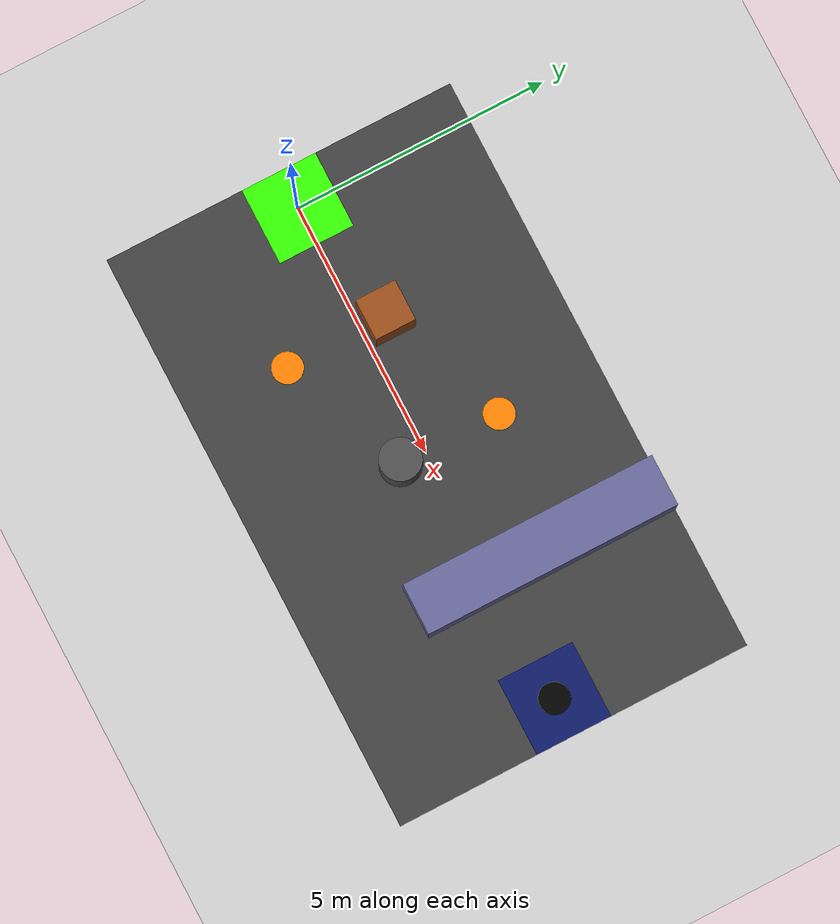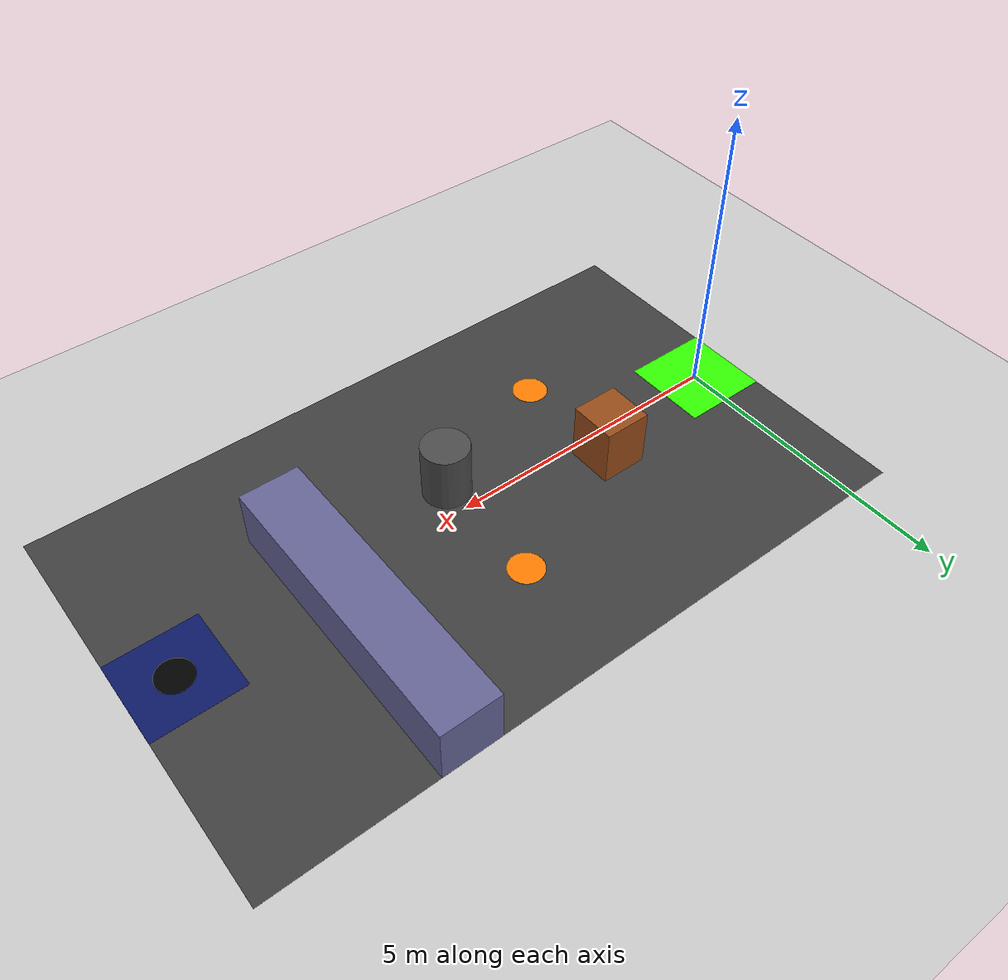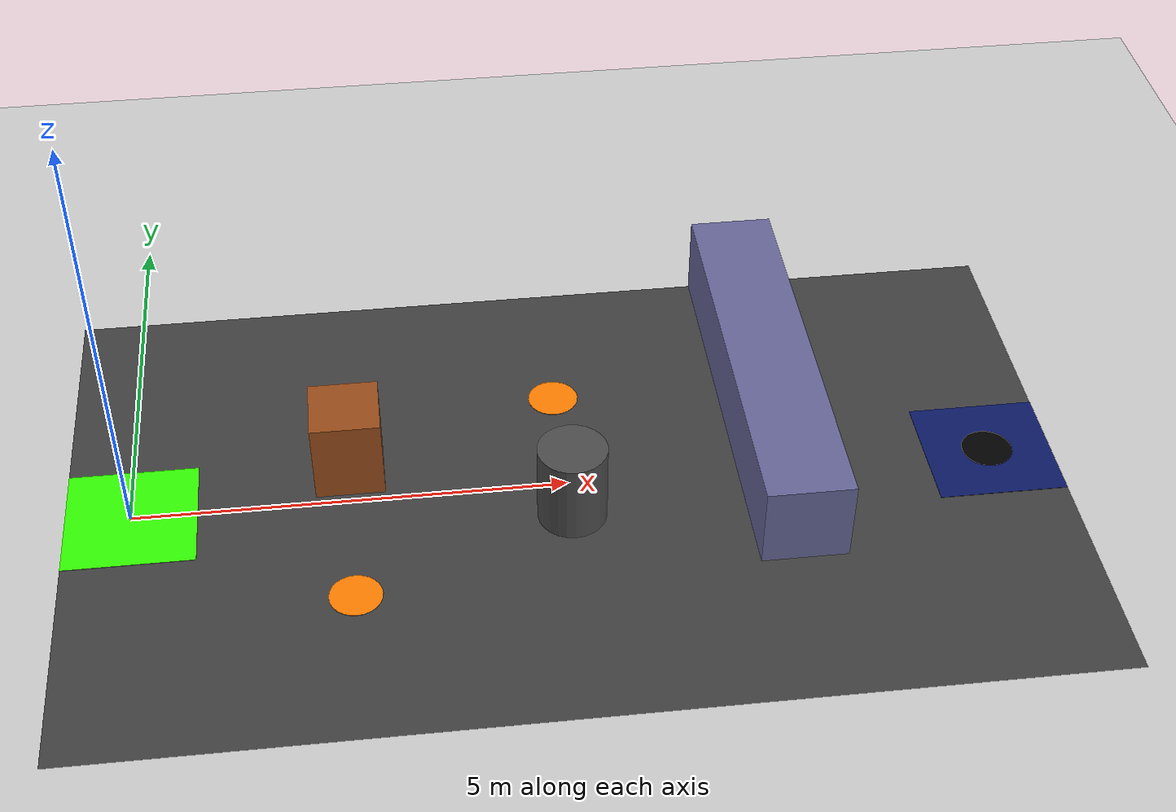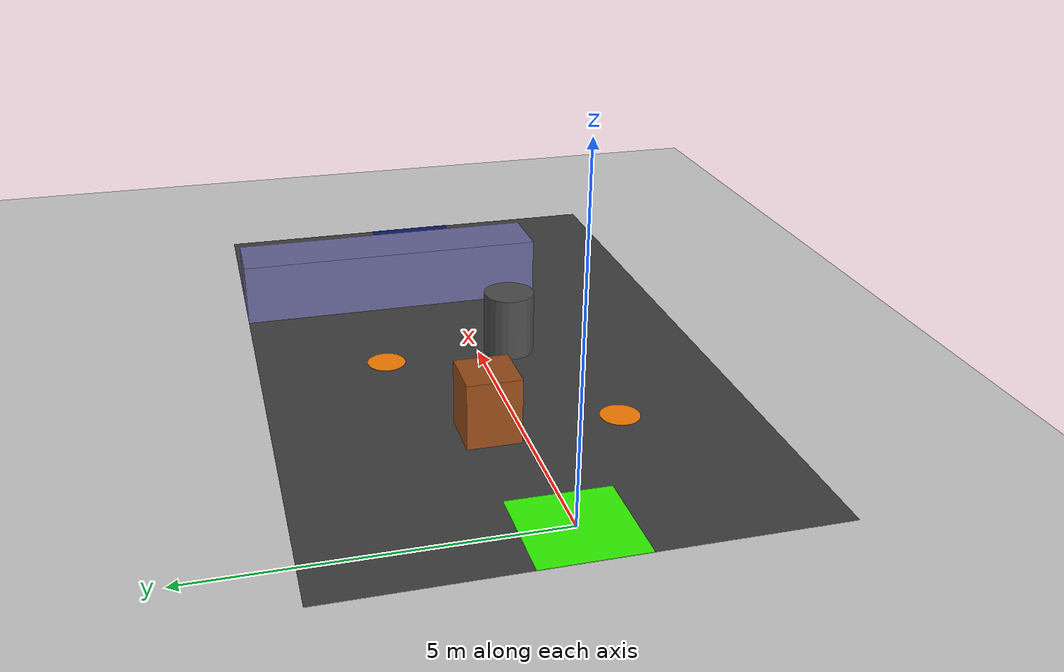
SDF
<sdf version='1.7'>
  <world name='default'>

    <gui fullscreen='0'>
        <camera name='user_camera'>
            <pose>18.0 -12.0 8.0 0 0.4 2.3</pose>
            <view_controller>orbit</view_controller>
            <projection_type>perspective</projection_type>
        </camera>
    </gui>

    <light name='sun' type='directional'>
      <cast_shadows>1</cast_shadows>
      <pose>0 0 10 0 -0 0</pose>
      <diffuse>0.8 0.8 0.8 1</diffuse>
      <specular>0.2 0.2 0.2 1</specular>
      <attenuation>
        <range>1000</range>
        <constant>0.9</constant>
        <linear>0.01</linear>
        <quadratic>0.001</quadratic>
      </attenuation>
      <direction>-0.5 0.1 -0.9</direction>
      <spot>
        <inner_angle>0</inner_angle>
        <outer_angle>0</outer_angle>
        <falloff>0</falloff>
      </spot>
    </light>
    <model name='ground_plane'>
      <static>1</static>
      <link name='link'>
        <collision name='collision'>
          <geometry>
            <plane>
              <normal>0 0 1</normal>
              <size>100 100</size>
            </plane>
          </geometry>
          <surface>
            <contact>
              <collide_bitmask>65535</collide_bitmask>
              <ode/>
            </contact>
            <friction>
              <ode>
                <mu>100</mu>
                <mu2>50</mu2>
              </ode>
              <torsional>
                <ode/>
              </torsional>
            </friction>
            <bounce/>
          </surface>
          <max_contacts>10</max_contacts>
        </collision>
        <visual name='visual'>
          <cast_shadows>0</cast_shadows>
          <geometry>
            <plane>
              <normal>0 0 1</normal>
              <size>100 100</size>
            </plane>
          </geometry>
          <material>
            <script>
              <uri>file://media/materials/scripts/gazebo.material</uri>
              <name>Gazebo/Grey</name>
            </script>
          </material>
        </visual>
        <self_collide>0</self_collide>
        <enable_wind>0</enable_wind>
        <kinematic>0</kinematic>
      </link>
    </model>

    <model name="zone_start">
      <static>true</static>
      <pose>0.0 0.0 0.005 0 0 0</pose>
      <link name="link">
        <visual name="visual">
          <geometry>
            <box><size>1.5 1.5 0.01</size></box>
          </geometry>
          <material>
            <ambient>0.2 1.0 0.0 1</ambient>
            <diffuse>0.2 1.0 0.0 1</diffuse>
            <emissive>0.1 0.5 0.0 1</emissive>
          </material>
        </visual>
      </link>
    </model>

    <model name="battlefield">
      <static>true</static>
      <pose>5.0 0.0 0.003 0 0 0</pose>
      <link name="link">
        <visual name="visual">
          <geometry>
            <box><size>11.5 7.0 0.001</size></box>
          </geometry>
          <material>
            <ambient>0.25 0.25 0.25 1</ambient>
            <diffuse>0.25 0.25 0.25 1</diffuse>
            <emissive>0.1 0.1 0.1 1</emissive>
          </material>
        </visual>
      </link>
    </model>

    <model name="zone_finish">
      <static>true</static>
      <pose>10.0 0.0 0.005 0 0 0</pose>
      <link name="link">
        <visual name="visual_base">
          <geometry>
            <box><size>1.5 1.5 0.01</size></box>
          </geometry>
          <material>
            <ambient>0.05 0.1 0.4 1</ambient>
            <diffuse>0.05 0.1 0.4 1</diffuse>
          </material>
        </visual>
        <visual name="visual_marker">
          <pose>0 0 0.006 0 0 0</pose>
          <geometry>
            <cylinder><radius>0.3</radius><length>0.005</length></cylinder>
          </geometry>
          <material>
            <ambient>0.0 0.0 0.0 1</ambient>
            <diffuse>0.0 0.0 0.0 1</diffuse>
          </material>
        </visual>
      </link>
    </model>

    <model name="waypoint_1">
      <static>true</static>
      <pose>2.5 -1.5 0.005 0 0 0</pose>
      <link name="link">
        <visual name="visual">
          <geometry>
            <cylinder><radius>0.3</radius><length>0.01</length></cylinder>
          </geometry>
          <material>
            <ambient>1.0 0.5 0.0 1</ambient>
            <diffuse>1.0 0.5 0.0 1</diffuse>
            <emissive>0.3 0.15 0.0 1</emissive>
          </material>
        </visual>
      </link>
    </model>

    <model name="waypoint_2">
      <static>true</static>
      <pose>5.0 1.5 0.005 0 0 0</pose>
      <link name="link">
        <visual name="visual">
          <geometry>
            <cylinder><radius>0.3</radius><length>0.01</length></cylinder>
          </geometry>
          <material>
            <ambient>1.0 0.5 0.0 1</ambient>
            <diffuse>1.0 0.5 0.0 1</diffuse>
            <emissive>0.3 0.15 0.0 1</emissive>
          </material>
        </visual>
      </link>
    </model>

    <model name="obstacle_1">
      <static>true</static>
      <pose>2.5 0.5 0.5 0 0 0</pose>
      <link name="link">
        <collision name="collision">
          <geometry><box><size>0.8 0.8 1.0</size></box></geometry>
        </collision>
        <visual name="visual">
          <geometry><box><size>0.8 0.8 1.0</size></box></geometry>
          <material>
            <ambient>0.6 0.3 0.1 1</ambient>
            <diffuse>0.6 0.3 0.1 1</diffuse>
          </material>
        </visual>
      </link>
    </model>

    <model name="obstacle_2">
      <static>true</static>
      <pose>5.0 -0.5 0.5 0 0 0</pose>
      <link name="link">
        <collision name="collision">
          <geometry><cylinder><radius>0.4</radius><length>1.0</length></cylinder></geometry>
        </collision>
        <visual name="visual">
          <geometry><cylinder><radius>0.4</radius><length>1.0</length></cylinder></geometry>
          <material>
            <ambient>0.3 0.3 0.3 1</ambient>
            <diffuse>0.3 0.3 0.3 1</diffuse>
          </material>
        </visual>
      </link>
    </model>

    <model name="obstacle_3">
      <static>true</static>
      <pose>7.5 1.0 0.5 0 0 0</pose>
      <link name="link">
        <collision name="collision">
          <geometry><box><size>1.0 5.0 1.0</size></box></geometry>
        </collision>
        <visual name="visual">
          <geometry><box><size>1.0 5.0 1.0</size></box></geometry>
          <material>
            <ambient>0.4 0.4 0.6 1</ambient>
            <diffuse>0.4 0.4 0.6 1</diffuse>
          </material>
        </visual>
      </link>
    </model>

    <gravity>0 0 -9.8</gravity>
    <magnetic_field>6e-06 2.3e-05 -4.2e-05</magnetic_field>
    <atmosphere type='adiabatic'/>
    <physics type='ode'>
      <max_step_size>0.001</max_step_size>
      <real_time_factor>1</real_time_factor>
      <real_time_update_rate>1000</real_time_update_rate>
    </physics>
    <scene>
      <ambient>0.4 0.4 0.4 1</ambient>
      <background>0.7 0.7 0.7 1</background>
      <shadows>1</shadows>
    </scene>
    <audio>
      <device>default</device>
    </audio>
    <wind/>
    <spherical_coordinates>
      <surface_model>EARTH_WGS84</surface_model>
      <latitude_deg>0</latitude_deg>
      <longitude_deg>0</longitude_deg>
      <elevation>0</elevation>
      <heading_deg>0</heading_deg>
    </spherical_coordinates>
  </world>
</sdf>
